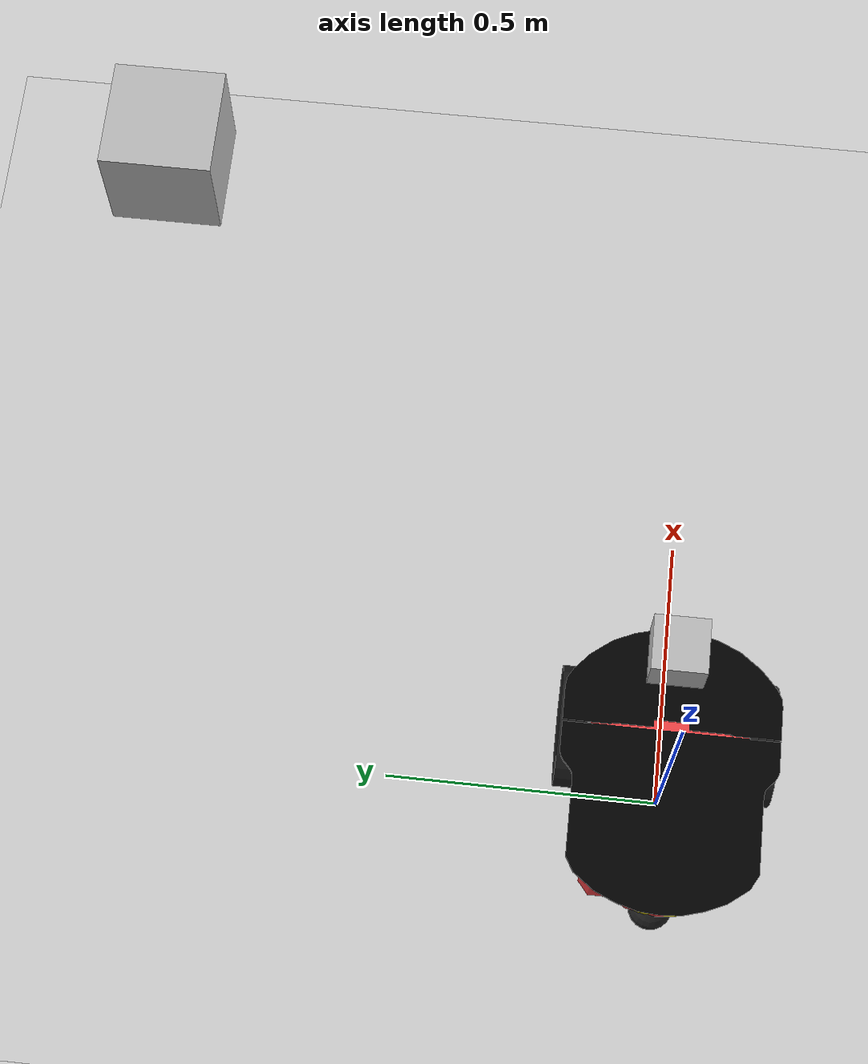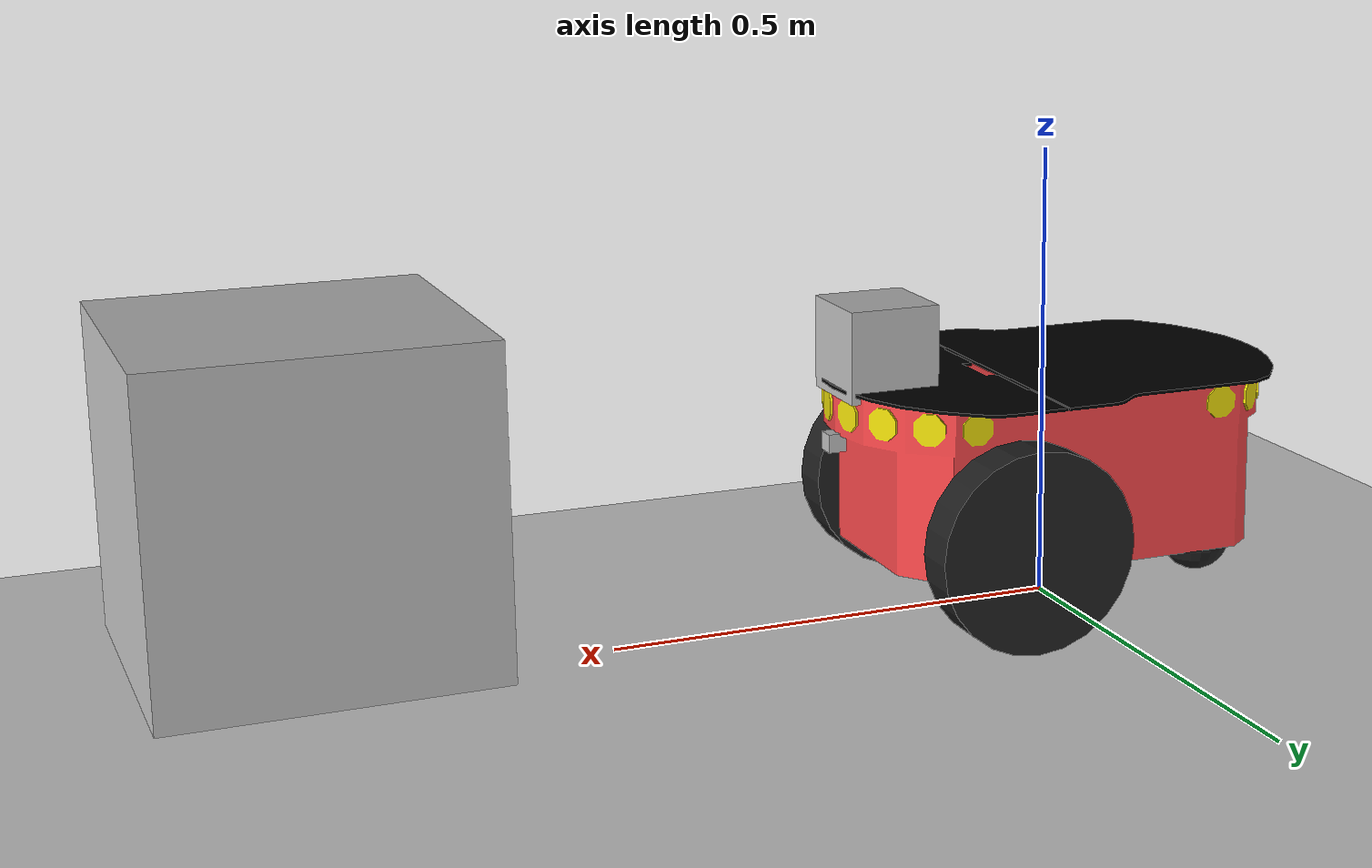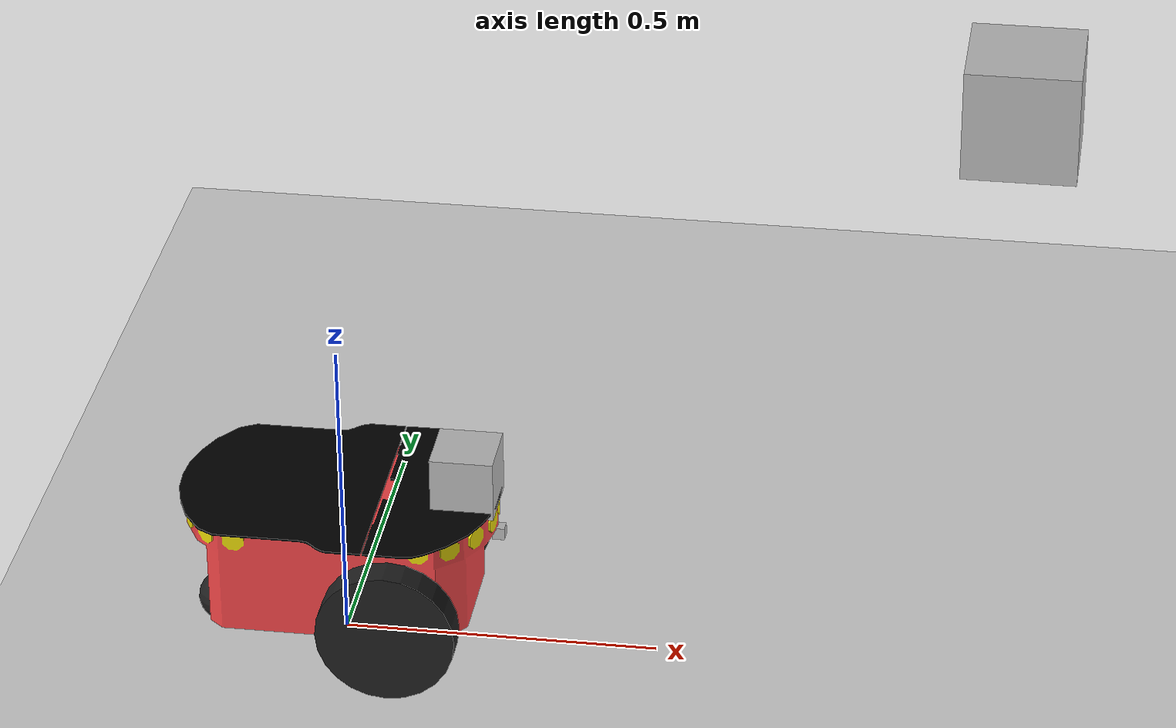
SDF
<?xml version="1.0" ?>
<sdf version="1.5">
  <world name="default">
    <!-- Ground -->
    <include>
      <uri>model://ground_plane</uri>
    </include>
    <!-- A global light source -->
    <include>
      <uri>model://sun</uri>
    </include>

    <!-- Pioneer2dx model -->
    <model name="pioneer2dx">
      <include>
        <uri>model://pioneer2dx_noplugin</uri>
      </include>

      <include>
        <uri>model://camera</uri>
        <pose>0.2 0 .3 0 0 0</pose>
      </include>

      <joint name="camera_joint" type="revolute">
        <parent>pioneer2dx::pioneer2dx::chassis</parent>
        <child>pioneer2dx::camera::link</child>
        <axis>
          <xyz>0 0 1</xyz>
          <limit>
            <lower>0</lower>
            <upper>0</upper>
          </limit>
        </axis>
      </joint>
    </model>
    <model name="goal">
      <pose>1 1 0 0 0 0</pose>
      <link name ="link">
        <pose>0 0 .5 0 0 0</pose>
        <collision name ="collision">
          <geometry>
            <box><size>0.2 0.2 0.2</size></box>
          </geometry>
        </collision>
        <visual name ='visual'>
          <geometry>
            <box><size>0.2 0.2 0.2</size></box>
          </geometry>
        </visual>
      </link>
    </model>

  </world>
</sdf>

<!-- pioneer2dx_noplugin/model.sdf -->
<sdf version="1.5">
  <model name="pioneer2dx_noplugin">
    <link name="chassis">
      <pose>0 0 0.16 0 0 0</pose>
      <inertial>
        <mass>5.67</mass>
        <inertia>
          <ixx>0.07</ixx>
          <iyy>0.08</iyy>
          <izz>0.10</izz>
          <ixy>0</ixy>
          <ixz>0</ixz>
          <iyz>0</iyz>
        </inertia>
      </inertial>
      <collision name="collision">
        <geometry>
          <box>
            <size>0.445 0.277 0.17</size>
          </box>
        </geometry>
      </collision>
      <collision name="castor_collision">
        <pose>-0.200 0 -0.12 0 0 0</pose>
        <geometry>
          <sphere>
            <radius>0.04</radius>
          </sphere>
        </geometry>
        <surface>
          <friction>
            <ode>
              <mu>0</mu>
              <mu2>0</mu2>
              <slip1>1.0</slip1>
              <slip2>1.0</slip2>
            </ode>
          </friction>
        </surface>
      </collision>
      <visual name="visual">
        <pose>0 0 0.04 0 0 0</pose>
        <geometry>
          <mesh>
            <uri>model://pioneer2dx/meshes/chassis.dae</uri>
          </mesh>
        </geometry>
      </visual>
      <visual name="castor_visual">
        <pose>-0.200 0 -0.12 0 0 0</pose>
        <geometry>
          <sphere>
            <radius>0.04</radius>
          </sphere>
        </geometry>
        <material>
          <script>
            <uri>file://media/materials/scripts/gazebo.material</uri>
            <name>Gazebo/FlatBlack</name>
          </script>
        </material>
      </visual>
    </link>
    <link name="camera_link">
      <pose>0.25 0 0.20 0 0 0</pose>
      <visual name="visual">
        <geometry>
          <box>
            <size>0.02 0.02 0.02</size>
          </box>
        </geometry>
      </visual>
      <sensor name="camera" type="camera">
        <camera>
          <horizontal_fov>2.0944</horizontal_fov>
          <image>
            <width>128</width>
            <height>128</height>
          </image>
          <clip>
            <near>0.001</near>
            <far>100</far>
          </clip>
        </camera>
        <always_on>1</always_on>
        <update_rate>20</update_rate>
        <visualize>true</visualize>
      </sensor>
    </link>
    <link name="right_wheel">
      <pose>0.1 -.17 0.11 0 1.5707 1.5707</pose>
      <inertial>
        <mass>1.5</mass>
        <inertia>
          <ixx>0.0051</ixx>
          <iyy>0.0051</iyy>
          <izz>0.0090</izz>
          <ixy>0</ixy>
          <ixz>0</ixz>
          <iyz>0</iyz>
        </inertia>
      </inertial>
      <collision name="collision">
        <geometry>
          <cylinder>
            <radius>0.11</radius>
            <length>0.05</length>
          </cylinder>
        </geometry>
        <surface>
          <friction>
            <ode>
              <mu>100000.0</mu>
              <mu2>100000.0</mu2>
              <slip1>0.0</slip1>
              <slip2>0.0</slip2>
            </ode>
          </friction>
        </surface>
      </collision>
      <visual name="visual">
        <geometry>
          <cylinder>
            <radius>0.11</radius>
            <length>0.05</length>
          </cylinder>
        </geometry>
        <material>
          <script>
            <uri>file://media/materials/scripts/gazebo.material</uri>
            <name>Gazebo/FlatBlack</name>
          </script>
        </material>
      </visual>
    </link>
    <link name="left_wheel">
      <pose>0.1 .17 0.11 0 1.5707 1.5707</pose>
      <inertial>
        <mass>1.5</mass>
        <inertia>
          <ixx>0.0051</ixx>
          <iyy>0.0051</iyy>
          <izz>0.0090</izz>
          <ixy>0</ixy>
          <ixz>0</ixz>
          <iyz>0</iyz>
        </inertia>
      </inertial>
      <collision name="collision">
        <geometry>
          <cylinder>
            <radius>0.11</radius>
            <length>0.05</length>
          </cylinder>
        </geometry>
        <surface>
          <friction>
            <ode>
              <mu>100000.0</mu>
              <mu2>100000.0</mu2>
              <slip1>0.0</slip1>
              <slip2>0.0</slip2>
            </ode>
          </friction>
        </surface>
      </collision>
      <visual name="visual">
        <geometry>
          <cylinder>
            <radius>0.11</radius>
            <length>0.05</length>
          </cylinder>
        </geometry>
        <material>
          <script>
            <uri>file://media/materials/scripts/gazebo.material</uri>
            <name>Gazebo/FlatBlack</name>
          </script>
        </material>
      </visual>
    </link>
    <joint type="fixed" name="camera_joint">
      <pose>0 0 0 0 0 0</pose>
      <child>camera_link</child>
      <parent>chassis</parent>
      <axis>
        <xyz>0 0 1</xyz>
        <use_parent_model_frame>true</use_parent_model_frame>
      </axis>
    </joint>
    <joint type="revolute" name="left_wheel_hinge">
      <pose>0 0 -0.03 0 0 0</pose>
      <child>left_wheel</child>
      <parent>chassis</parent>
      <axis>
        <xyz>0 1 0</xyz>
        <use_parent_model_frame>true</use_parent_model_frame>
        <limit>
          <effort>1</effort>
          <velocity>100</velocity>
        </limit>
      </axis>
    </joint>
    <joint type="revolute" name="right_wheel_hinge">
      <pose>0 0 0.03 0 0 0</pose>
      <child>right_wheel</child>
      <parent>chassis</parent>
      <axis>
        <xyz>0 1 0</xyz>
        <use_parent_model_frame>true</use_parent_model_frame>
        <limit>
          <effort>1</effort>
          <velocity>100</velocity>
        </limit>
      </axis>
    </joint>
  </model>
</sdf>

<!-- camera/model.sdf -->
<sdf version="1.5">
  <model name="camera">
    <pose>0 0 0.05 0 0 0</pose>
    <link name="link">
      <inertial>
        <mass>0.1</mass>
        <inertia>
          <ixx>0.000166667</ixx>
          <iyy>0.000166667</iyy>
          <izz>0.000166667</izz>
        </inertia>
      </inertial>
      <collision name="collision">
        <geometry>
          <box>
            <size>0.1 0.1 0.1</size>
          </box>
        </geometry>
      </collision>
      <visual name="visual">
        <geometry>
          <box>
            <size>0.1 0.1 0.1</size>
          </box>
        </geometry>
      </visual>
      <sensor name="camera" type="camera">
        <camera>
          <horizontal_fov>1.047</horizontal_fov>
          <image>
            <width>320</width>
            <height>240</height>
          </image>
          <clip>
            <near>0.1</near>
            <far>100</far>
          </clip>
        </camera>
        <always_on>1</always_on>
        <update_rate>30</update_rate>
        <visualize>true</visualize>
      </sensor>
    </link>
  </model>
</sdf>
